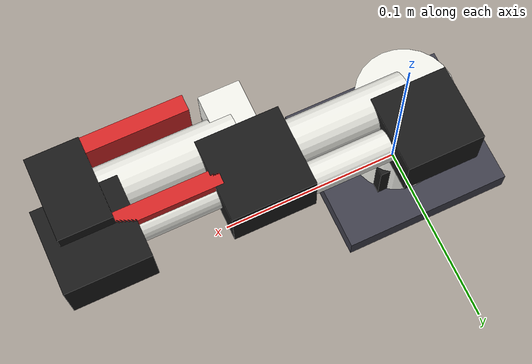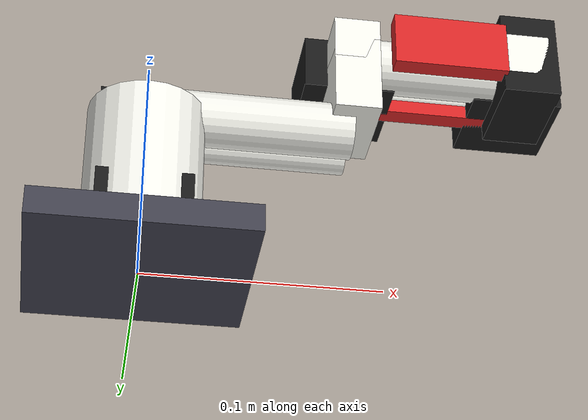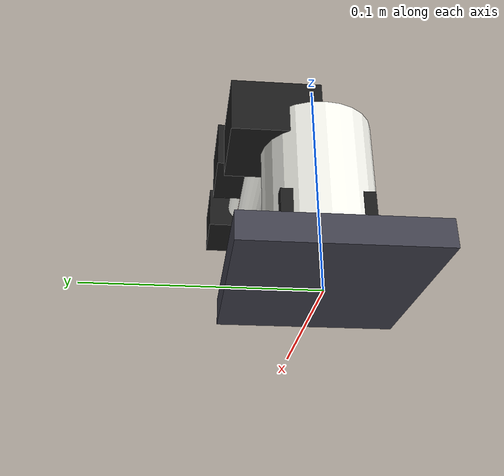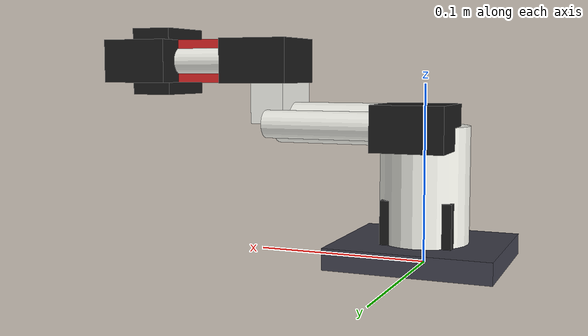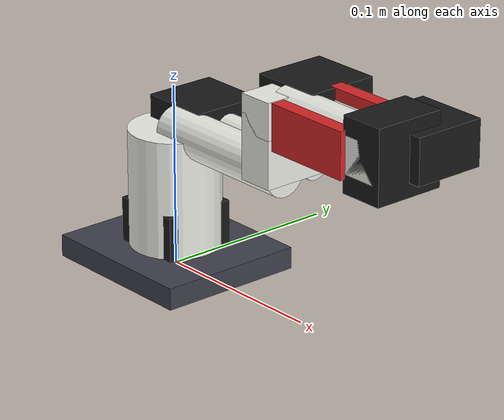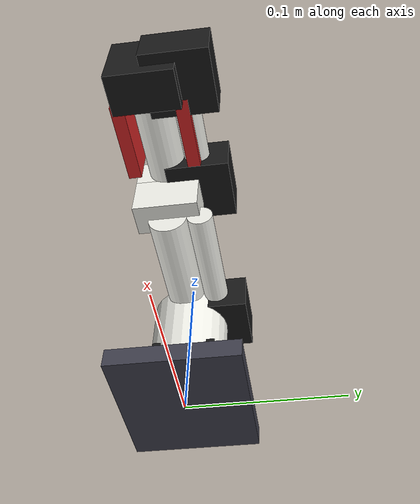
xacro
<?xml version="1.0"?>
<robot xmlns:xacro="http://www.ros.org/wiki/xacro" name="soarm101">

  <material name="white_pla">
    <color rgba="0.95 0.95 0.92 1.0"/>
  </material>
  <material name="black_motor">
    <color rgba="0.10 0.10 0.10 1.0"/>
  </material>
  <material name="red_gripper">
    <color rgba="0.85 0.15 0.15 1.0"/>
  </material>
  <material name="dark_gray">
    <color rgba="0.25 0.25 0.30 1.0"/>
  </material>

  <!-- ==================== 惯性宏 ==================== -->
  <xacro:macro name="box_inertial" params="mass x y z">
    <inertial>
      <mass value="${mass}"/>
      <inertia
        ixx="${mass * (y*y + z*z) / 12}"
        ixy="0" ixz="0"
        iyy="${mass * (x*x + z*z) / 12}"
        iyz="0"
        izz="${mass * (x*x + y*y) / 12}"/>
    </inertial>
  </xacro:macro>

  <xacro:macro name="cylinder_inertial" params="mass radius height">
    <inertial>
      <mass value="${mass}"/>
      <inertia
        ixx="${mass * (3*radius*radius + height*height) / 12}"
        ixy="0" ixz="0"
        iyy="${mass * (3*radius*radius + height*height) / 12}"
        iyz="0"
        izz="${mass * radius*radius / 2}"/>
    </inertial>
  </xacro:macro>

  <!-- 舵机可视化（仅视觉，不含碰撞） -->
  <xacro:macro name="motor_visual" params="xyz rpy">
    <visual>
      <origin xyz="${xyz}" rpy="${rpy}"/>
      <geometry>
        <box size="0.040 0.040 0.025"/>
      </geometry>
      <material name="black_motor"/>
    </visual>
  </xacro:macro>

  <!-- ========================================================================
       base_link - 底座底板  92×82×12mm
       ======================================================================== -->
  <link name="base_link">
    <xacro:box_inertial mass="0.25" x="0.092" y="0.082" z="0.012"/>
    <visual>
      <origin xyz="0 0 0.006" rpy="0 0 0"/>
      <geometry>
        <box size="0.092 0.082 0.012"/>
      </geometry>
      <material name="dark_gray"/>
    </visual>
    <collision>
      <origin xyz="0 0 0.006" rpy="0 0 0"/>
      <geometry>
        <box size="0.092 0.082 0.012"/>
      </geometry>
    </collision>
  </link>

  <!-- ========================================================================
       joint1: 底座旋转(Z轴)  ±360°  1号舵机在底座内部
       ======================================================================== -->
  <joint name="joint1" type="revolute">
    <parent link="base_link"/>
    <child link="link1"/>
    <origin xyz="0 0 0.012" rpy="0 0 0"/>
    <axis xyz="0 0 1"/>
    <limit lower="-3.14159" upper="3.14159" effort="15" velocity="3.14"/>
    <dynamics damping="0.2" friction="0.2"/>
  </joint>

  <!--  link1: 垂直支撑柱, 高度0.065m  -->
  <link name="link1">
    <xacro:cylinder_inertial mass="0.12" radius="0.025" height="0.065"/>
    <visual>
      <origin xyz="0 0 0.0325" rpy="0 0 0"/>
      <geometry>
        <cylinder radius="0.025" length="0.065"/>
      </geometry>
      <material name="white_pla"/>
    </visual>
    <xacro:motor_visual xyz="0 0 0.012" rpy="0 0 0"/>
    <collision>
      <origin xyz="0 0 0.0325" rpy="0 0 0"/>
      <geometry>
        <cylinder radius="0.022" length="0.065"/>
      </geometry>
    </collision>
  </link>

  <joint name="joint2" type="revolute">
    <parent link="link1"/>
    <child link="link2"/>
    <origin xyz="0 0 0.065" rpy="0 0 0"/>
    <axis xyz="0 1 0"/>
    <limit lower="-3.14159" upper="3.14159" effort="15" velocity="3.14"/>
    <dynamics damping="0.2" friction="0.2"/>
  </joint>

  <!--  link2: 大臂, 沿X向前0.088m, 末端下方连接link3  -->
  <link name="link2">
    <xacro:cylinder_inertial mass="0.18" radius="0.012" height="0.088"/>
    <!-- 主杆 -->
    <visual>
      <origin xyz="0.044 0 0" rpy="0 1.5708 0"/>
      <geometry>
        <cylinder radius="0.012" length="0.088"/>
      </geometry>
      <material name="white_pla"/>
    </visual>
    <!-- 侧杆 -->
    <visual>
      <origin xyz="0.044 0.020 0" rpy="0 1.5708 0"/>
      <geometry>
        <cylinder radius="0.008" length="0.088"/>
      </geometry>
      <material name="white_pla"/>
    </visual>
    <!-- 2号舵机 -->
    <xacro:motor_visual xyz="0 0.020 0" rpy="0 0 0"/>
    <!-- 末端连接支架: 向上桥接到joint3, link2举着joint3 -->
    <visual>
      <origin xyz="0.088 0 0.018" rpy="0 0 0"/>
      <geometry>
        <box size="0.020 0.040 0.036"/>
      </geometry>
      <material name="white_pla"/>
    </visual>
    <!-- 碰撞: 覆盖整段大臂+连接支架 -->
    <collision>
      <origin xyz="0.044 0 0.006" rpy="0 0 0"/>
      <geometry>
        <box size="0.088 0.036 0.040"/>
      </geometry>
    </collision>
  </link>

  <joint name="joint3" type="revolute">
    <parent link="link2"/>
    <child link="link3"/>
    <origin xyz="0.088 0 0.036" rpy="0 3.14159 0"/>
    <axis xyz="0 1 0"/>
    <limit lower="-3.14159" upper="3.14159" effort="15" velocity="3.14"/>
    <dynamics damping="0.2" friction="0.2"/>
  </joint>

  <!--  link3: 小臂, 沿X向前0.076m (经rpy翻转后实际向前)
       注意: rpy=π使X轴反向, 所以link3内几何体用负X坐标, 翻转后变成正X  -->
  <link name="link3">
    <xacro:cylinder_inertial mass="0.15" radius="0.012" height="0.076"/>
    <!-- 主杆: 中心在X=-0.038, 翻转后中心在X=+0.038 -->
    <visual>
      <origin xyz="-0.038 0 0" rpy="0 1.5708 0"/>
      <geometry>
        <cylinder radius="0.012" length="0.076"/>
      </geometry>
      <material name="white_pla"/>
    </visual>
    <!-- 侧杆 -->
    <visual>
      <origin xyz="-0.038 0.020 0" rpy="0 1.5708 0"/>
      <geometry>
        <cylinder radius="0.008" length="0.076"/>
      </geometry>
      <material name="white_pla"/>
    </visual>
    <!-- 3号舵机 -->
    <xacro:motor_visual xyz="0 0.020 0" rpy="0 0 0"/>
    <!-- 根部连接件: 从joint3轴到杆体起点 -->
    <visual>
      <origin xyz="0 0 0" rpy="0 0 0"/>
      <geometry>
        <box size="0.020 0.040 0.020"/>
      </geometry>
      <material name="white_pla"/>
    </visual>
    <!-- 末端连接件: X=-0.076, 翻转后X=+0.076 -->
    <visual>
      <origin xyz="-0.076 0 0" rpy="0 0 0"/>
      <geometry>
        <box size="0.020 0.040 0.020"/>
      </geometry>
      <material name="white_pla"/>
    </visual>
    <!-- 碰撞 -->
    <collision>
      <origin xyz="-0.038 0 0" rpy="0 0 0"/>
      <geometry>
        <box size="0.076 0.036 0.030"/>
      </geometry>
    </collision>
  </link>

  <joint name="joint4" type="revolute">
    <parent link="link3"/>
    <child link="link4"/>
    <origin xyz="-0.076 0 0" rpy="0 0 0"/>
    <axis xyz="0 1 0"/>
    <limit lower="-1.5708" upper="1.5708" effort="12" velocity="3.14"/>
    <dynamics damping="0.15" friction="0.15"/>
  </joint>

  <!--  link4: 腕部短连接段, 0.012m (X轴反向，避免穿模) -->
  <link name="link4">
    <xacro:box_inertial mass="0.08" x="0.012" y="0.03" z="0.03"/>
    <visual>
      <origin xyz="-0.006 0 0" rpy="0 0 0"/>
      <geometry>
        <box size="0.012 0.035 0.035"/>
      </geometry>
      <material name="white_pla"/>
    </visual>
    <xacro:motor_visual xyz="0 0.020 0" rpy="0 0 0"/>
    <collision>
      <origin xyz="-0.006 0 0" rpy="0 0 0"/>
      <geometry>
        <box size="0.012 0.030 0.030"/>
      </geometry>
    </collision>
  </link>

  <joint name="joint5" type="revolute">
    <parent link="link4"/>
    <child link="link5"/>
    <origin xyz="-0.012 0 0" rpy="0 0 0"/>
    <axis xyz="1 0 0"/>
    <limit lower="-3.14159" upper="3.14159" effort="10" velocity="3.14"/>
    <dynamics damping="0.1" friction="0.1"/>
  </joint>

  <!--  link5: 夹爪基座, 0.022m  -->
  <link name="link5">
    <xacro:box_inertial mass="0.10" x="0.022" y="0.03" z="0.03"/>
    <visual>
      <origin xyz="0.011 0 0" rpy="0 0 0"/>
      <geometry>
        <box size="0.022 0.035 0.035"/>
      </geometry>
      <material name="white_pla"/>
    </visual>
    <xacro:motor_visual xyz="0.011 0 0" rpy="0 1.5708 0"/>
    <collision>
      <origin xyz="0.011 0 0" rpy="0 0 0"/>
      <geometry>
        <box size="0.022 0.030 0.030"/>
      </geometry>
    </collision>
  </link>

  <!-- ========================================================================
       joint6: 夹爪开合(旋转Y轴)  6号舵机  0-90°
       ======================================================================== -->
  <joint name="joint6" type="revolute">
    <parent link="link5"/>
    <child link="gripper_left"/>
    <origin xyz="0.022 0.007 0" rpy="0 0 0"/>
    <axis xyz="0 1 0"/>
    <limit lower="0" upper="1.5708" effort="5" velocity="3.14"/>
    <dynamics damping="0.3" friction="0.3"/>
  </joint>
  <joint name="gripper_right_joint" type="revolute">
    <parent link="link5"/>
    <child link="gripper_right"/>
    <origin xyz="0.022 -0.007 0" rpy="0 0 0"/>
    <axis xyz="0 -1 0"/>
    <limit lower="0" upper="1.5708" effort="5" velocity="3.14"/>
    <dynamics damping="0.3" friction="0.3"/>
    <mimic joint="joint6" multiplier="1" offset="0"/>
  </joint>

  <!--  gripper_left: 左爪, 红色, 0.05m  -->
  <link name="gripper_left">
    <xacro:box_inertial mass="0.02" x="0.05" y="0.006" z="0.025"/>
    <visual>
      <origin xyz="0.025 0.012 0" rpy="0 0 0"/>
      <geometry>
        <box size="0.05 0.008 0.025"/>
      </geometry>
      <material name="red_gripper"/>
    </visual>
    <visual>
      <origin xyz="0.045 0.002 0" rpy="0 0 0"/>
      <geometry>
        <box size="0.015 0.005 0.006"/>
      </geometry>
      <material name="red_gripper"/>
    </visual>
    <collision>
      <origin xyz="0.025 0.012 0" rpy="0 0 0"/>
      <geometry>
        <box size="0.05 0.006 0.022"/>
      </geometry>
    </collision>
  </link>

  <!--  gripper_right: 右爪, 红色, 0.05m  -->
  <link name="gripper_right">
    <xacro:box_inertial mass="0.02" x="0.05" y="0.006" z="0.025"/>
    <visual>
      <origin xyz="0.025 -0.012 0" rpy="0 0 0"/>
      <geometry>
        <box size="0.05 0.008 0.025"/>
      </geometry>
      <material name="red_gripper"/>
    </visual>
    <visual>
      <origin xyz="0.045 -0.002 0" rpy="0 0 0"/>
      <geometry>
        <box size="0.015 0.005 0.006"/>
      </geometry>
      <material name="red_gripper"/>
    </visual>
    <collision>
      <origin xyz="0.025 -0.012 0" rpy="0 0 0"/>
      <geometry>
        <box size="0.05 0.006 0.022"/>
      </geometry>
    </collision>
  </link>

  <!--  tool0: TCP, 夹爪中间向前0.057m  -->
  <link name="tool0">
    <inertial>
      <mass value="1e-9"/>
      <origin xyz="0 0 0" rpy="0 0 0"/>
      <inertia ixx="0" ixy="0" ixz="0" iyy="0" iyz="0" izz="0"/>
    </inertial>
  </link>
  <joint name="tool0_joint" type="fixed">
    <parent link="link5"/>
    <child link="tool0"/>
    <origin xyz="0.057 0 0" rpy="0 0 0"/>
    <axis xyz="0 0 0"/>
  </joint>

  <!--  ros2_control 传动 -->
  <xacro:macro name="transmission" params="joint_name">
    <transmission name="${joint_name}_trans">
      <type>transmission_interface/SimpleTransmission</type>
      <joint name="${joint_name}">
        <hardwareInterface>hardware_interface/PositionJointInterface</hardwareInterface>
      </joint>
      <actuator name="${joint_name}_motor">
        <hardwareInterface>hardware_interface/PositionJointInterface</hardwareInterface>
        <mechanicalReduction>1</mechanicalReduction>
      </actuator>
    </transmission>
  </xacro:macro>
  <xacro:transmission joint_name="joint1"/>
  <xacro:transmission joint_name="joint2"/>
  <xacro:transmission joint_name="joint3"/>
  <xacro:transmission joint_name="joint4"/>
  <xacro:transmission joint_name="joint5"/>
  <xacro:transmission joint_name="joint6"/>

</robot>
